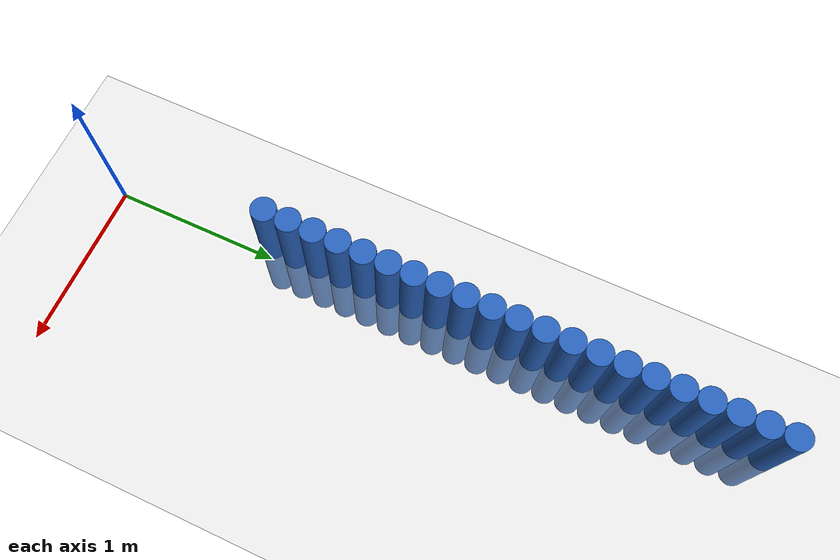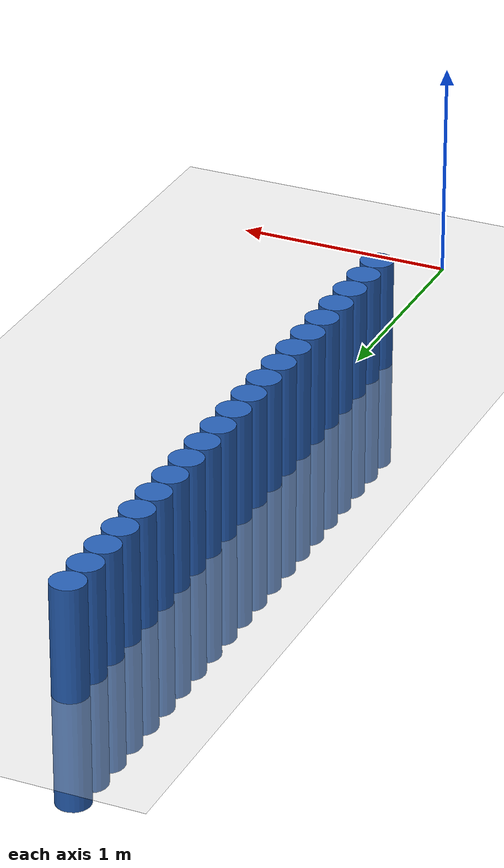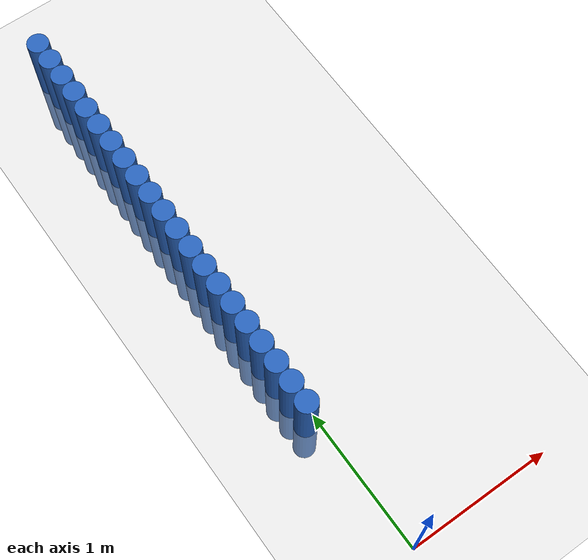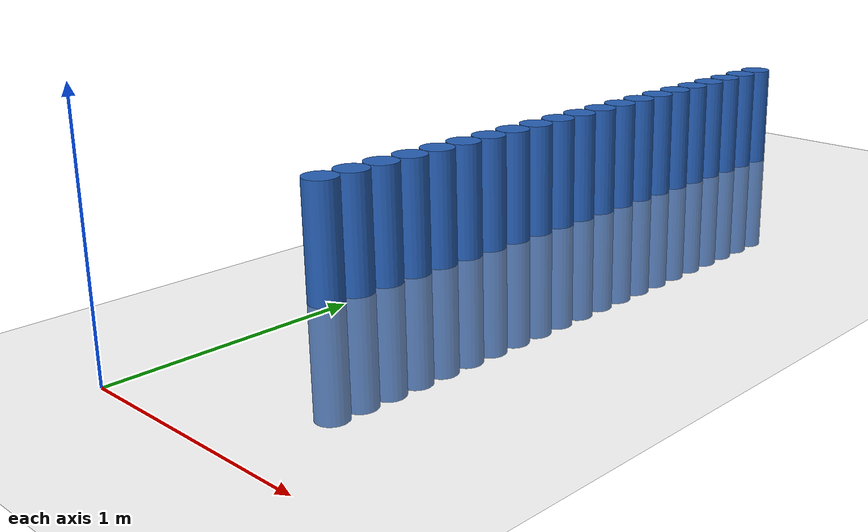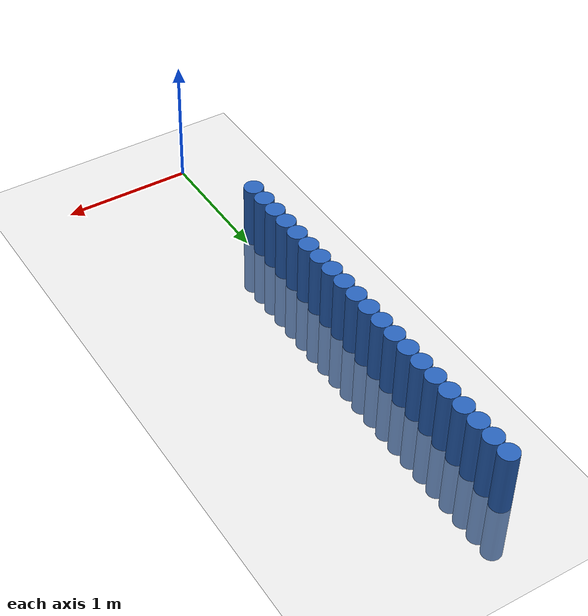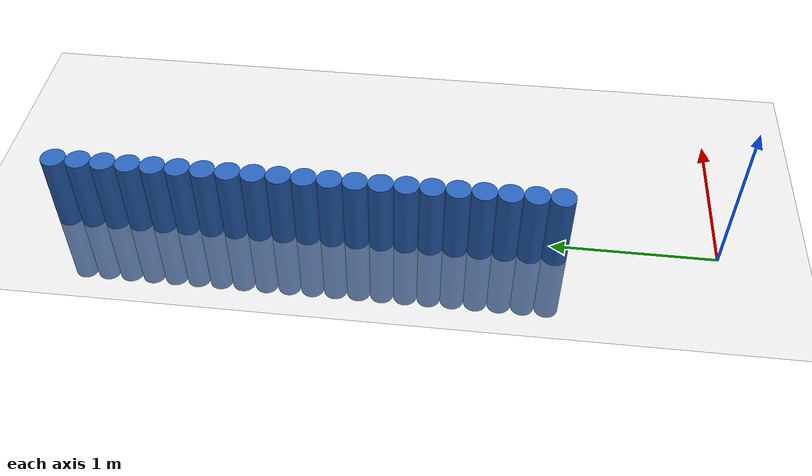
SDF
<sdf version="1.6">
 <world name="default">
  <model name="ground_plane">
   <static>1</static>
   <link name="link">
    <collision name="collision">
     <geometry><plane><normal>0 0 1</normal><size>100 100</size></plane></geometry>
     <surface><friction><ode><mu>100</mu><mu2>50</mu2></ode></friction></surface>
    </collision>
    <visual name="visual">
     <cast_shadows>0</cast_shadows>
     <geometry><plane><normal>0 0 1</normal><size>100 100</size></plane></geometry>
     <material>
      <script><uri>file://media/materials/scripts/gazebo.material</uri><name>Gazebo/Grey</name></script>
     </material>
    </visual>
   </link>
  </model>
  <model name="unit_cylinder_40">
   <static>1</static>
   <pose>-0.075000 0.975000 0.000000 0.000000 0.000000 0.000000</pose>
   <link name="link">
    <inertial>
     <mass>1</mass>
     <inertia><ixx>0.145833</ixx><ixy>0</ixy><ixz>0</ixz><iyy>0.145833</iyy><iyz>0</iyz><izz>0.125</izz></inertia>
    </inertial>
    <collision name="collision">
     <geometry><cylinder><radius>0.075000</radius><length>1</length></cylinder></geometry>
    </collision>
    <visual name="visual">
     <geometry><cylinder><radius>0.075000</radius><length>1</length></cylinder></geometry>
     <material>
      <ambient>0.152000 0.379000 0.720000 1</ambient>
      <diffuse>0.152000 0.379000 0.720000 1</diffuse>
     </material>
     <material>
      <script><name>Gazebo/Grey</name><uri>file://media/materials/scripts/gazebo.material</uri></script>
     </material>
    </visual>
    <sensor name="sensor_contact" type="contact"><contact><collision>collision</collision></contact></sensor>
   </link>
   <plugin filename="gz-sim-touchplugin-system" name="gz::sim::systems::TouchPlugin">
    <target>robot</target>
    <namespace>robot</namespace>
    <time>0.001</time>
    <enabled>true</enabled>
   </plugin>
  </model>
  <model name="unit_cylinder_42">
   <static>1</static>
   <pose>-0.075000 1.125000 0.000000 0.000000 0.000000 0.000000</pose>
   <link name="link">
    <inertial>
     <mass>1</mass>
     <inertia><ixx>0.145833</ixx><ixy>0</ixy><ixz>0</ixz><iyy>0.145833</iyy><iyz>0</iyz><izz>0.125</izz></inertia>
    </inertial>
    <collision name="collision">
     <geometry><cylinder><radius>0.075000</radius><length>1</length></cylinder></geometry>
    </collision>
    <visual name="visual">
     <geometry><cylinder><radius>0.075000</radius><length>1</length></cylinder></geometry>
     <material>
      <ambient>0.152000 0.379000 0.720000 1</ambient>
      <diffuse>0.152000 0.379000 0.720000 1</diffuse>
     </material>
     <material>
      <script><name>Gazebo/Grey</name><uri>file://media/materials/scripts/gazebo.material</uri></script>
     </material>
    </visual>
    <sensor name="sensor_contact" type="contact"><contact><collision>collision</collision></contact></sensor>
   </link>
   <plugin filename="gz-sim-touchplugin-system" name="gz::sim::systems::TouchPlugin">
    <target>robot</target>
    <namespace>robot</namespace>
    <time>0.001</time>
    <enabled>true</enabled>
   </plugin>
  </model>
  <model name="unit_cylinder_44">
   <static>1</static>
   <pose>-0.075000 1.275000 0.000000 0.000000 0.000000 0.000000</pose>
   <link name="link">
    <inertial>
     <mass>1</mass>
     <inertia><ixx>0.145833</ixx><ixy>0</ixy><ixz>0</ixz><iyy>0.145833</iyy><iyz>0</iyz><izz>0.125</izz></inertia>
    </inertial>
    <collision name="collision">
     <geometry><cylinder><radius>0.075000</radius><length>1</length></cylinder></geometry>
    </collision>
    <visual name="visual">
     <geometry><cylinder><radius>0.075000</radius><length>1</length></cylinder></geometry>
     <material>
      <ambient>0.152000 0.379000 0.720000 1</ambient>
      <diffuse>0.152000 0.379000 0.720000 1</diffuse>
     </material>
     <material>
      <script><name>Gazebo/Grey</name><uri>file://media/materials/scripts/gazebo.material</uri></script>
     </material>
    </visual>
    <sensor name="sensor_contact" type="contact"><contact><collision>collision</collision></contact></sensor>
   </link>
   <plugin filename="gz-sim-touchplugin-system" name="gz::sim::systems::TouchPlugin">
    <target>robot</target>
    <namespace>robot</namespace>
    <time>0.001</time>
    <enabled>true</enabled>
   </plugin>
  </model>
  <model name="unit_cylinder_46">
   <static>1</static>
   <pose>-0.075000 1.425000 0.000000 0.000000 0.000000 0.000000</pose>
   <link name="link">
    <inertial>
     <mass>1</mass>
     <inertia><ixx>0.145833</ixx><ixy>0</ixy><ixz>0</ixz><iyy>0.145833</iyy><iyz>0</iyz><izz>0.125</izz></inertia>
    </inertial>
    <collision name="collision">
     <geometry><cylinder><radius>0.075000</radius><length>1</length></cylinder></geometry>
    </collision>
    <visual name="visual">
     <geometry><cylinder><radius>0.075000</radius><length>1</length></cylinder></geometry>
     <material>
      <ambient>0.152000 0.379000 0.720000 1</ambient>
      <diffuse>0.152000 0.379000 0.720000 1</diffuse>
     </material>
     <material>
      <script><name>Gazebo/Grey</name><uri>file://media/materials/scripts/gazebo.material</uri></script>
     </material>
    </visual>
    <sensor name="sensor_contact" type="contact"><contact><collision>collision</collision></contact></sensor>
   </link>
   <plugin filename="gz-sim-touchplugin-system" name="gz::sim::systems::TouchPlugin">
    <target>robot</target>
    <namespace>robot</namespace>
    <time>0.001</time>
    <enabled>true</enabled>
   </plugin>
  </model>
  <model name="unit_cylinder_48">
   <static>1</static>
   <pose>-0.075000 1.575000 0.000000 0.000000 0.000000 0.000000</pose>
   <link name="link">
    <inertial>
     <mass>1</mass>
     <inertia><ixx>0.145833</ixx><ixy>0</ixy><ixz>0</ixz><iyy>0.145833</iyy><iyz>0</iyz><izz>0.125</izz></inertia>
    </inertial>
    <collision name="collision">
     <geometry><cylinder><radius>0.075000</radius><length>1</length></cylinder></geometry>
    </collision>
    <visual name="visual">
     <geometry><cylinder><radius>0.075000</radius><length>1</length></cylinder></geometry>
     <material>
      <ambient>0.152000 0.379000 0.720000 1</ambient>
      <diffuse>0.152000 0.379000 0.720000 1</diffuse>
     </material>
     <material>
      <script><name>Gazebo/Grey</name><uri>file://media/materials/scripts/gazebo.material</uri></script>
     </material>
    </visual>
    <sensor name="sensor_contact" type="contact"><contact><collision>collision</collision></contact></sensor>
   </link>
   <plugin filename="gz-sim-touchplugin-system" name="gz::sim::systems::TouchPlugin">
    <target>robot</target>
    <namespace>robot</namespace>
    <time>0.001</time>
    <enabled>true</enabled>
   </plugin>
  </model>
  <model name="unit_cylinder_50">
   <static>1</static>
   <pose>-0.075000 1.725000 0.000000 0.000000 0.000000 0.000000</pose>
   <link name="link">
    <inertial>
     <mass>1</mass>
     <inertia><ixx>0.145833</ixx><ixy>0</ixy><ixz>0</ixz><iyy>0.145833</iyy><iyz>0</iyz><izz>0.125</izz></inertia>
    </inertial>
    <collision name="collision">
     <geometry><cylinder><radius>0.075000</radius><length>1</length></cylinder></geometry>
    </collision>
    <visual name="visual">
     <geometry><cylinder><radius>0.075000</radius><length>1</length></cylinder></geometry>
     <material>
      <ambient>0.152000 0.379000 0.720000 1</ambient>
      <diffuse>0.152000 0.379000 0.720000 1</diffuse>
     </material>
     <material>
      <script><name>Gazebo/Grey</name><uri>file://media/materials/scripts/gazebo.material</uri></script>
     </material>
    </visual>
    <sensor name="sensor_contact" type="contact"><contact><collision>collision</collision></contact></sensor>
   </link>
   <plugin filename="gz-sim-touchplugin-system" name="gz::sim::systems::TouchPlugin">
    <target>robot</target>
    <namespace>robot</namespace>
    <time>0.001</time>
    <enabled>true</enabled>
   </plugin>
  </model>
  <model name="unit_cylinder_52">
   <static>1</static>
   <pose>-0.075000 1.875000 0.000000 0.000000 0.000000 0.000000</pose>
   <link name="link">
    <inertial>
     <mass>1</mass>
     <inertia><ixx>0.145833</ixx><ixy>0</ixy><ixz>0</ixz><iyy>0.145833</iyy><iyz>0</iyz><izz>0.125</izz></inertia>
    </inertial>
    <collision name="collision">
     <geometry><cylinder><radius>0.075000</radius><length>1</length></cylinder></geometry>
    </collision>
    <visual name="visual">
     <geometry><cylinder><radius>0.075000</radius><length>1</length></cylinder></geometry>
     <material>
      <ambient>0.152000 0.379000 0.720000 1</ambient>
      <diffuse>0.152000 0.379000 0.720000 1</diffuse>
     </material>
     <material>
      <script><name>Gazebo/Grey</name><uri>file://media/materials/scripts/gazebo.material</uri></script>
     </material>
    </visual>
    <sensor name="sensor_contact" type="contact"><contact><collision>collision</collision></contact></sensor>
   </link>
   <plugin filename="gz-sim-touchplugin-system" name="gz::sim::systems::TouchPlugin">
    <target>robot</target>
    <namespace>robot</namespace>
    <time>0.001</time>
    <enabled>true</enabled>
   </plugin>
  </model>
  <model name="unit_cylinder_54">
   <static>1</static>
   <pose>-0.075000 2.025000 0.000000 0.000000 0.000000 0.000000</pose>
   <link name="link">
    <inertial>
     <mass>1</mass>
     <inertia><ixx>0.145833</ixx><ixy>0</ixy><ixz>0</ixz><iyy>0.145833</iyy><iyz>0</iyz><izz>0.125</izz></inertia>
    </inertial>
    <collision name="collision">
     <geometry><cylinder><radius>0.075000</radius><length>1</length></cylinder></geometry>
    </collision>
    <visual name="visual">
     <geometry><cylinder><radius>0.075000</radius><length>1</length></cylinder></geometry>
     <material>
      <ambient>0.152000 0.379000 0.720000 1</ambient>
      <diffuse>0.152000 0.379000 0.720000 1</diffuse>
     </material>
     <material>
      <script><name>Gazebo/Grey</name><uri>file://media/materials/scripts/gazebo.material</uri></script>
     </material>
    </visual>
    <sensor name="sensor_contact" type="contact"><contact><collision>collision</collision></contact></sensor>
   </link>
   <plugin filename="gz-sim-touchplugin-system" name="gz::sim::systems::TouchPlugin">
    <target>robot</target>
    <namespace>robot</namespace>
    <time>0.001</time>
    <enabled>true</enabled>
   </plugin>
  </model>
  <model name="unit_cylinder_56">
   <static>1</static>
   <pose>-0.075000 2.175000 0.000000 0.000000 0.000000 0.000000</pose>
   <link name="link">
    <inertial>
     <mass>1</mass>
     <inertia><ixx>0.145833</ixx><ixy>0</ixy><ixz>0</ixz><iyy>0.145833</iyy><iyz>0</iyz><izz>0.125</izz></inertia>
    </inertial>
    <collision name="collision">
     <geometry><cylinder><radius>0.075000</radius><length>1</length></cylinder></geometry>
    </collision>
    <visual name="visual">
     <geometry><cylinder><radius>0.075000</radius><length>1</length></cylinder></geometry>
     <material>
      <ambient>0.152000 0.379000 0.720000 1</ambient>
      <diffuse>0.152000 0.379000 0.720000 1</diffuse>
     </material>
     <material>
      <script><name>Gazebo/Grey</name><uri>file://media/materials/scripts/gazebo.material</uri></script>
     </material>
    </visual>
    <sensor name="sensor_contact" type="contact"><contact><collision>collision</collision></contact></sensor>
   </link>
   <plugin filename="gz-sim-touchplugin-system" name="gz::sim::systems::TouchPlugin">
    <target>robot</target>
    <namespace>robot</namespace>
    <time>0.001</time>
    <enabled>true</enabled>
   </plugin>
  </model>
  <model name="unit_cylinder_58">
   <static>1</static>
   <pose>-0.075000 2.325000 0.000000 0.000000 0.000000 0.000000</pose>
   <link name="link">
    <inertial>
     <mass>1</mass>
     <inertia><ixx>0.145833</ixx><ixy>0</ixy><ixz>0</ixz><iyy>0.145833</iyy><iyz>0</iyz><izz>0.125</izz></inertia>
    </inertial>
    <collision name="collision">
     <geometry><cylinder><radius>0.075000</radius><length>1</length></cylinder></geometry>
    </collision>
    <visual name="visual">
     <geometry><cylinder><radius>0.075000</radius><length>1</length></cylinder></geometry>
     <material>
      <ambient>0.152000 0.379000 0.720000 1</ambient>
      <diffuse>0.152000 0.379000 0.720000 1</diffuse>
     </material>
     <material>
      <script><name>Gazebo/Grey</name><uri>file://media/materials/scripts/gazebo.material</uri></script>
     </material>
    </visual>
    <sensor name="sensor_contact" type="contact"><contact><collision>collision</collision></contact></sensor>
   </link>
   <plugin filename="gz-sim-touchplugin-system" name="gz::sim::systems::TouchPlugin">
    <target>robot</target>
    <namespace>robot</namespace>
    <time>0.001</time>
    <enabled>true</enabled>
   </plugin>
  </model>
  <model name="unit_cylinder_60">
   <static>1</static>
   <pose>-0.075000 2.475000 0.000000 0.000000 0.000000 0.000000</pose>
   <link name="link">
    <inertial>
     <mass>1</mass>
     <inertia><ixx>0.145833</ixx><ixy>0</ixy><ixz>0</ixz><iyy>0.145833</iyy><iyz>0</iyz><izz>0.125</izz></inertia>
    </inertial>
    <collision name="collision">
     <geometry><cylinder><radius>0.075000</radius><length>1</length></cylinder></geometry>
    </collision>
    <visual name="visual">
     <geometry><cylinder><radius>0.075000</radius><length>1</length></cylinder></geometry>
     <material>
      <ambient>0.152000 0.379000 0.720000 1</ambient>
      <diffuse>0.152000 0.379000 0.720000 1</diffuse>
     </material>
     <material>
      <script><name>Gazebo/Grey</name><uri>file://media/materials/scripts/gazebo.material</uri></script>
     </material>
    </visual>
    <sensor name="sensor_contact" type="contact"><contact><collision>collision</collision></contact></sensor>
   </link>
   <plugin filename="gz-sim-touchplugin-system" name="gz::sim::systems::TouchPlugin">
    <target>robot</target>
    <namespace>robot</namespace>
    <time>0.001</time>
    <enabled>true</enabled>
   </plugin>
  </model>
  <model name="unit_cylinder_62">
   <static>1</static>
   <pose>-0.075000 2.625000 0.000000 0.000000 0.000000 0.000000</pose>
   <link name="link">
    <inertial>
     <mass>1</mass>
     <inertia><ixx>0.145833</ixx><ixy>0</ixy><ixz>0</ixz><iyy>0.145833</iyy><iyz>0</iyz><izz>0.125</izz></inertia>
    </inertial>
    <collision name="collision">
     <geometry><cylinder><radius>0.075000</radius><length>1</length></cylinder></geometry>
    </collision>
    <visual name="visual">
     <geometry><cylinder><radius>0.075000</radius><length>1</length></cylinder></geometry>
     <material>
      <ambient>0.152000 0.379000 0.720000 1</ambient>
      <diffuse>0.152000 0.379000 0.720000 1</diffuse>
     </material>
     <material>
      <script><name>Gazebo/Grey</name><uri>file://media/materials/scripts/gazebo.material</uri></script>
     </material>
    </visual>
    <sensor name="sensor_contact" type="contact"><contact><collision>collision</collision></contact></sensor>
   </link>
   <plugin filename="gz-sim-touchplugin-system" name="gz::sim::systems::TouchPlugin">
    <target>robot</target>
    <namespace>robot</namespace>
    <time>0.001</time>
    <enabled>true</enabled>
   </plugin>
  </model>
  <model name="unit_cylinder_64">
   <static>1</static>
   <pose>-0.075000 2.775000 0.000000 0.000000 0.000000 0.000000</pose>
   <link name="link">
    <inertial>
     <mass>1</mass>
     <inertia><ixx>0.145833</ixx><ixy>0</ixy><ixz>0</ixz><iyy>0.145833</iyy><iyz>0</iyz><izz>0.125</izz></inertia>
    </inertial>
    <collision name="collision">
     <geometry><cylinder><radius>0.075000</radius><length>1</length></cylinder></geometry>
    </collision>
    <visual name="visual">
     <geometry><cylinder><radius>0.075000</radius><length>1</length></cylinder></geometry>
     <material>
      <ambient>0.152000 0.379000 0.720000 1</ambient>
      <diffuse>0.152000 0.379000 0.720000 1</diffuse>
     </material>
     <material>
      <script><name>Gazebo/Grey</name><uri>file://media/materials/scripts/gazebo.material</uri></script>
     </material>
    </visual>
    <sensor name="sensor_contact" type="contact"><contact><collision>collision</collision></contact></sensor>
   </link>
   <plugin filename="gz-sim-touchplugin-system" name="gz::sim::systems::TouchPlugin">
    <target>robot</target>
    <namespace>robot</namespace>
    <time>0.001</time>
    <enabled>true</enabled>
   </plugin>
  </model>
  <model name="unit_cylinder_66">
   <static>1</static>
   <pose>-0.075000 2.925000 0.000000 0.000000 0.000000 0.000000</pose>
   <link name="link">
    <inertial>
     <mass>1</mass>
     <inertia><ixx>0.145833</ixx><ixy>0</ixy><ixz>0</ixz><iyy>0.145833</iyy><iyz>0</iyz><izz>0.125</izz></inertia>
    </inertial>
    <collision name="collision">
     <geometry><cylinder><radius>0.075000</radius><length>1</length></cylinder></geometry>
    </collision>
    <visual name="visual">
     <geometry><cylinder><radius>0.075000</radius><length>1</length></cylinder></geometry>
     <material>
      <ambient>0.152000 0.379000 0.720000 1</ambient>
      <diffuse>0.152000 0.379000 0.720000 1</diffuse>
     </material>
     <material>
      <script><name>Gazebo/Grey</name><uri>file://media/materials/scripts/gazebo.material</uri></script>
     </material>
    </visual>
    <sensor name="sensor_contact" type="contact"><contact><collision>collision</collision></contact></sensor>
   </link>
   <plugin filename="gz-sim-touchplugin-system" name="gz::sim::systems::TouchPlugin">
    <target>robot</target>
    <namespace>robot</namespace>
    <time>0.001</time>
    <enabled>true</enabled>
   </plugin>
  </model>
  <model name="unit_cylinder_68">
   <static>1</static>
   <pose>-0.075000 3.075000 0.000000 0.000000 0.000000 0.000000</pose>
   <link name="link">
    <inertial>
     <mass>1</mass>
     <inertia><ixx>0.145833</ixx><ixy>0</ixy><ixz>0</ixz><iyy>0.145833</iyy><iyz>0</iyz><izz>0.125</izz></inertia>
    </inertial>
    <collision name="collision">
     <geometry><cylinder><radius>0.075000</radius><length>1</length></cylinder></geometry>
    </collision>
    <visual name="visual">
     <geometry><cylinder><radius>0.075000</radius><length>1</length></cylinder></geometry>
     <material>
      <ambient>0.152000 0.379000 0.720000 1</ambient>
      <diffuse>0.152000 0.379000 0.720000 1</diffuse>
     </material>
     <material>
      <script><name>Gazebo/Grey</name><uri>file://media/materials/scripts/gazebo.material</uri></script>
     </material>
    </visual>
    <sensor name="sensor_contact" type="contact"><contact><collision>collision</collision></contact></sensor>
   </link>
   <plugin filename="gz-sim-touchplugin-system" name="gz::sim::systems::TouchPlugin">
    <target>robot</target>
    <namespace>robot</namespace>
    <time>0.001</time>
    <enabled>true</enabled>
   </plugin>
  </model>
  <model name="unit_cylinder_70">
   <static>1</static>
   <pose>-0.075000 3.225000 0.000000 0.000000 0.000000 0.000000</pose>
   <link name="link">
    <inertial>
     <mass>1</mass>
     <inertia><ixx>0.145833</ixx><ixy>0</ixy><ixz>0</ixz><iyy>0.145833</iyy><iyz>0</iyz><izz>0.125</izz></inertia>
    </inertial>
    <collision name="collision">
     <geometry><cylinder><radius>0.075000</radius><length>1</length></cylinder></geometry>
    </collision>
    <visual name="visual">
     <geometry><cylinder><radius>0.075000</radius><length>1</length></cylinder></geometry>
     <material>
      <ambient>0.152000 0.379000 0.720000 1</ambient>
      <diffuse>0.152000 0.379000 0.720000 1</diffuse>
     </material>
     <material>
      <script><name>Gazebo/Grey</name><uri>file://media/materials/scripts/gazebo.material</uri></script>
     </material>
    </visual>
    <sensor name="sensor_contact" type="contact"><contact><collision>collision</collision></contact></sensor>
   </link>
   <plugin filename="gz-sim-touchplugin-system" name="gz::sim::systems::TouchPlugin">
    <target>robot</target>
    <namespace>robot</namespace>
    <time>0.001</time>
    <enabled>true</enabled>
   </plugin>
  </model>
  <model name="unit_cylinder_72">
   <static>1</static>
   <pose>-0.075000 3.375000 0.000000 0.000000 0.000000 0.000000</pose>
   <link name="link">
    <inertial>
     <mass>1</mass>
     <inertia><ixx>0.145833</ixx><ixy>0</ixy><ixz>0</ixz><iyy>0.145833</iyy><iyz>0</iyz><izz>0.125</izz></inertia>
    </inertial>
    <collision name="collision">
     <geometry><cylinder><radius>0.075000</radius><length>1</length></cylinder></geometry>
    </collision>
    <visual name="visual">
     <geometry><cylinder><radius>0.075000</radius><length>1</length></cylinder></geometry>
     <material>
      <ambient>0.152000 0.379000 0.720000 1</ambient>
      <diffuse>0.152000 0.379000 0.720000 1</diffuse>
     </material>
     <material>
      <script><name>Gazebo/Grey</name><uri>file://media/materials/scripts/gazebo.material</uri></script>
     </material>
    </visual>
    <sensor name="sensor_contact" type="contact"><contact><collision>collision</collision></contact></sensor>
   </link>
   <plugin filename="gz-sim-touchplugin-system" name="gz::sim::systems::TouchPlugin">
    <target>robot</target>
    <namespace>robot</namespace>
    <time>0.001</time>
    <enabled>true</enabled>
   </plugin>
  </model>
  <model name="unit_cylinder_74">
   <static>1</static>
   <pose>-0.075000 3.525000 0.000000 0.000000 0.000000 0.000000</pose>
   <link name="link">
    <inertial>
     <mass>1</mass>
     <inertia><ixx>0.145833</ixx><ixy>0</ixy><ixz>0</ixz><iyy>0.145833</iyy><iyz>0</iyz><izz>0.125</izz></inertia>
    </inertial>
    <collision name="collision">
     <geometry><cylinder><radius>0.075000</radius><length>1</length></cylinder></geometry>
    </collision>
    <visual name="visual">
     <geometry><cylinder><radius>0.075000</radius><length>1</length></cylinder></geometry>
     <material>
      <ambient>0.152000 0.379000 0.720000 1</ambient>
      <diffuse>0.152000 0.379000 0.720000 1</diffuse>
     </material>
     <material>
      <script><name>Gazebo/Grey</name><uri>file://media/materials/scripts/gazebo.material</uri></script>
     </material>
    </visual>
    <sensor name="sensor_contact" type="contact"><contact><collision>collision</collision></contact></sensor>
   </link>
   <plugin filename="gz-sim-touchplugin-system" name="gz::sim::systems::TouchPlugin">
    <target>robot</target>
    <namespace>robot</namespace>
    <time>0.001</time>
    <enabled>true</enabled>
   </plugin>
  </model>
  <model name="unit_cylinder_76">
   <static>1</static>
   <pose>-0.075000 3.675000 0.000000 0.000000 0.000000 0.000000</pose>
   <link name="link">
    <inertial>
     <mass>1</mass>
     <inertia><ixx>0.145833</ixx><ixy>0</ixy><ixz>0</ixz><iyy>0.145833</iyy><iyz>0</iyz><izz>0.125</izz></inertia>
    </inertial>
    <collision name="collision">
     <geometry><cylinder><radius>0.075000</radius><length>1</length></cylinder></geometry>
    </collision>
    <visual name="visual">
     <geometry><cylinder><radius>0.075000</radius><length>1</length></cylinder></geometry>
     <material>
      <ambient>0.152000 0.379000 0.720000 1</ambient>
      <diffuse>0.152000 0.379000 0.720000 1</diffuse>
     </material>
     <material>
      <script><name>Gazebo/Grey</name><uri>file://media/materials/scripts/gazebo.material</uri></script>
     </material>
    </visual>
    <sensor name="sensor_contact" type="contact"><contact><collision>collision</collision></contact></sensor>
   </link>
   <plugin filename="gz-sim-touchplugin-system" name="gz::sim::systems::TouchPlugin">
    <target>robot</target>
    <namespace>robot</namespace>
    <time>0.001</time>
    <enabled>true</enabled>
   </plugin>
  </model>
  <model name="unit_cylinder_78">
   <static>1</static>
   <pose>-0.075000 3.825000 0.000000 0.000000 0.000000 0.000000</pose>
   <link name="link">
    <inertial>
     <mass>1</mass>
     <inertia><ixx>0.145833</ixx><ixy>0</ixy><ixz>0</ixz><iyy>0.145833</iyy><iyz>0</iyz><izz>0.125</izz></inertia>
    </inertial>
    <collision name="collision">
     <geometry><cylinder><radius>0.075000</radius><length>1</length></cylinder></geometry>
    </collision>
    <visual name="visual">
     <geometry><cylinder><radius>0.075000</radius><length>1</length></cylinder></geometry>
     <material>
      <ambient>0.152000 0.379000 0.720000 1</ambient>
      <diffuse>0.152000 0.379000 0.720000 1</diffuse>
     </material>
     <material>
      <script><name>Gazebo/Grey</name><uri>file://media/materials/scripts/gazebo.material</uri></script>
     </material>
    </visual>
    <sensor name="sensor_contact" type="contact"><contact><collision>collision</collision></contact></sensor>
   </link>
   <plugin filename="gz-sim-touchplugin-system" name="gz::sim::systems::TouchPlugin">
    <target>robot</target>
    <namespace>robot</namespace>
    <time>0.001</time>
    <enabled>true</enabled>
   </plugin>
  </model>
  <model name="unit_cylinder_80">
   <static>1</static>
   <pose>-0.075000 3.975000 0.000000 0.000000 0.000000 0.000000</pose>
   <link name="link">
    <inertial>
     <mass>1</mass>
     <inertia><ixx>0.145833</ixx><ixy>0</ixy><ixz>0</ixz><iyy>0.145833</iyy><iyz>0</iyz><izz>0.125</izz></inertia>
    </inertial>
    <collision name="collision">
     <geometry><cylinder><radius>0.075000</radius><length>1</length></cylinder></geometry>
    </collision>
    <visual name="visual">
     <geometry><cylinder><radius>0.075000</radius><length>1</length></cylinder></geometry>
     <material>
      <ambient>0.152000 0.379000 0.720000 1</ambient>
      <diffuse>0.152000 0.379000 0.720000 1</diffuse>
     </material>
     <material>
      <script><name>Gazebo/Grey</name><uri>file://media/materials/scripts/gazebo.material</uri></script>
     </material>
    </visual>
    <sensor name="sensor_contact" type="contact"><contact><collision>collision</collision></contact></sensor>
   </link>
   <plugin filename="gz-sim-touchplugin-system" name="gz::sim::systems::TouchPlugin">
    <target>robot</target>
    <namespace>robot</namespace>
    <time>0.001</time>
    <enabled>true</enabled>
   </plugin>
  </model>
 </world>
</sdf>
